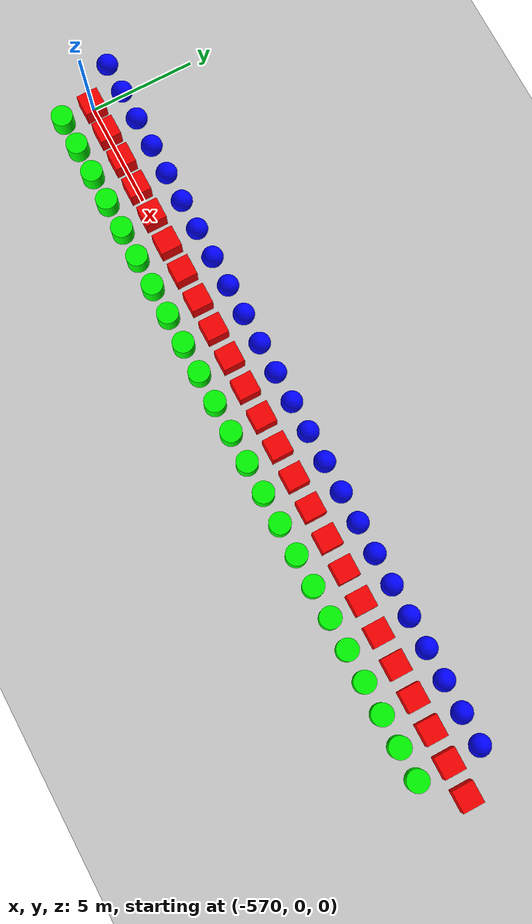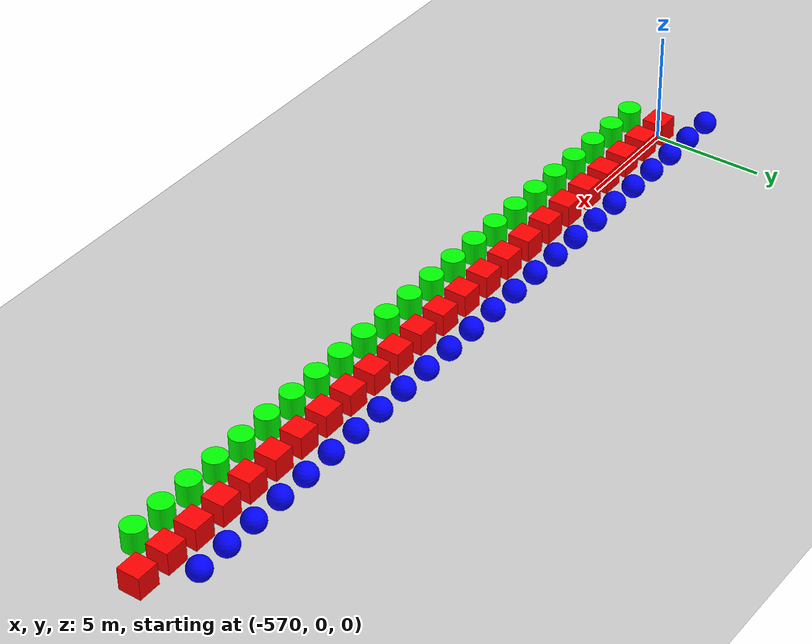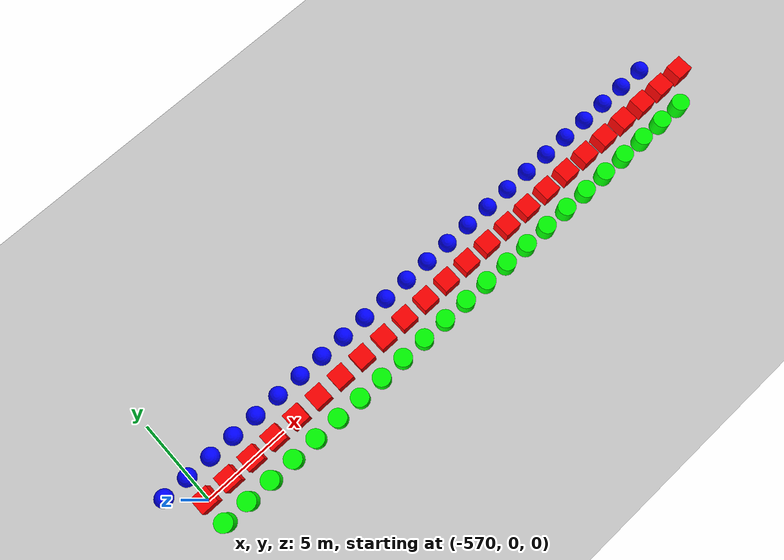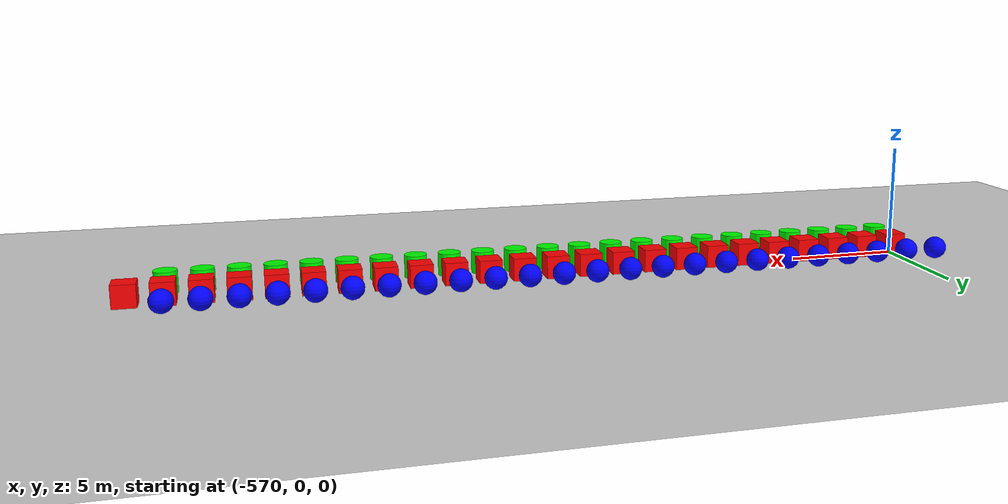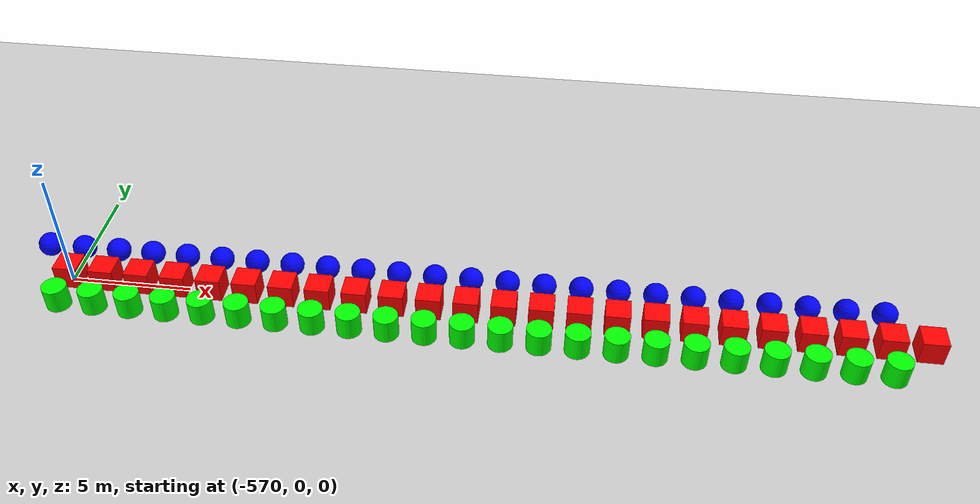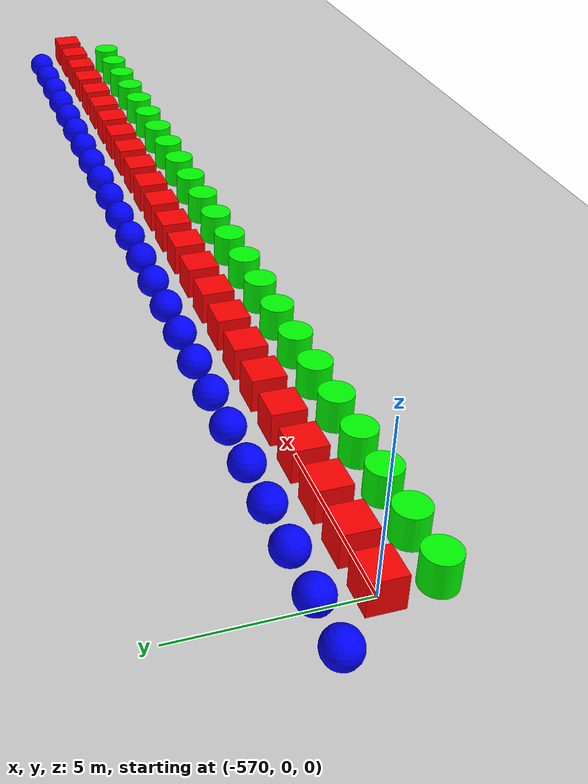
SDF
<sdf version="1.6">
 <world name="shapes">
  <model name="ground_plane">
   <static>true</static>
   <link name="link">
    <collision name="collision">
     <geometry><plane><normal>0 0 1</normal><size>100 100</size></plane></geometry>
    </collision>
    <visual name="visual">
     <geometry><plane><normal>0 0 1</normal><size>100 100</size></plane></geometry>
     <material>
      <ambient>0.8 0.8 0.8 1</ambient>
      <diffuse>0.8 0.8 0.8 1</diffuse>
      <specular>0.8 0.8 0.8 1</specular>
     </material>
    </visual>
   </link>
  </model>
  <model name="sphere_119">
   <pose>-571.5 1.5 0.5 0 0 0</pose>
   <link name="sphere_link">
    <inertial>
     <inertia><ixx>3</ixx><ixy>0</ixy><ixz>0</ixz><iyy>3</iyy><iyz>0</iyz><izz>3</izz></inertia>
     <mass>3.0</mass>
    </inertial>
    <collision name="sphere_collision"><geometry><sphere><radius>0.5</radius></sphere></geometry></collision>
    <visual name="sphere_visual">
     <geometry><sphere><radius>0.5</radius></sphere></geometry>
     <material><ambient>0 0 1 1</ambient><diffuse>0 0 1 1</diffuse><specular>0 0 1 1</specular></material>
    </visual>
   </link>
  </model>
  <model name="box_120">
   <pose>-570.0 0 0.5 0 0 0</pose>
   <link name="box_link">
    <inertial>
     <inertia><ixx>1</ixx><ixy>0</ixy><ixz>0</ixz><iyy>1</iyy><iyz>0</iyz><izz>1</izz></inertia>
     <mass>1.0</mass>
    </inertial>
    <collision name="box_collision"><geometry><box><size>1 1 1</size></box></geometry></collision>
    <visual name="box_visual">
     <geometry><box><size>1 1 1</size></box></geometry>
     <material><ambient>1 0 0 1</ambient><diffuse>1 0 0 1</diffuse><specular>1 0 0 1</specular></material>
    </visual>
   </link>
  </model>
  <model name="cylinder_120">
   <pose>-570.0 -1.5 0.5 0 0 0</pose>
   <link name="cylinder_link">
    <inertial>
     <inertia><ixx>2</ixx><ixy>0</ixy><ixz>0</ixz><iyy>2</iyy><iyz>0</iyz><izz>2</izz></inertia>
     <mass>2.0</mass>
    </inertial>
    <collision name="cylinder_collision">
     <geometry><cylinder><radius>0.5</radius><length>1.0</length></cylinder></geometry>
    </collision>
    <visual name="cylinder_visual">
     <geometry><cylinder><radius>0.5</radius><length>1.0</length></cylinder></geometry>
     <material><ambient>0 1 0 1</ambient><diffuse>0 1 0 1</diffuse><specular>0 1 0 1</specular></material>
    </visual>
   </link>
  </model>
  <model name="sphere_120">
   <pose>-570.0 1.5 0.5 0 0 0</pose>
   <link name="sphere_link">
    <inertial>
     <inertia><ixx>3</ixx><ixy>0</ixy><ixz>0</ixz><iyy>3</iyy><iyz>0</iyz><izz>3</izz></inertia>
     <mass>3.0</mass>
    </inertial>
    <collision name="sphere_collision"><geometry><sphere><radius>0.5</radius></sphere></geometry></collision>
    <visual name="sphere_visual">
     <geometry><sphere><radius>0.5</radius></sphere></geometry>
     <material><ambient>0 0 1 1</ambient><diffuse>0 0 1 1</diffuse><specular>0 0 1 1</specular></material>
    </visual>
   </link>
  </model>
  <model name="box_121">
   <pose>-568.5 0 0.5 0 0 0</pose>
   <link name="box_link">
    <inertial>
     <inertia><ixx>1</ixx><ixy>0</ixy><ixz>0</ixz><iyy>1</iyy><iyz>0</iyz><izz>1</izz></inertia>
     <mass>1.0</mass>
    </inertial>
    <collision name="box_collision"><geometry><box><size>1 1 1</size></box></geometry></collision>
    <visual name="box_visual">
     <geometry><box><size>1 1 1</size></box></geometry>
     <material><ambient>1 0 0 1</ambient><diffuse>1 0 0 1</diffuse><specular>1 0 0 1</specular></material>
    </visual>
   </link>
  </model>
  <model name="cylinder_121">
   <pose>-568.5 -1.5 0.5 0 0 0</pose>
   <link name="cylinder_link">
    <inertial>
     <inertia><ixx>2</ixx><ixy>0</ixy><ixz>0</ixz><iyy>2</iyy><iyz>0</iyz><izz>2</izz></inertia>
     <mass>2.0</mass>
    </inertial>
    <collision name="cylinder_collision">
     <geometry><cylinder><radius>0.5</radius><length>1.0</length></cylinder></geometry>
    </collision>
    <visual name="cylinder_visual">
     <geometry><cylinder><radius>0.5</radius><length>1.0</length></cylinder></geometry>
     <material><ambient>0 1 0 1</ambient><diffuse>0 1 0 1</diffuse><specular>0 1 0 1</specular></material>
    </visual>
   </link>
  </model>
  <model name="sphere_121">
   <pose>-568.5 1.5 0.5 0 0 0</pose>
   <link name="sphere_link">
    <inertial>
     <inertia><ixx>3</ixx><ixy>0</ixy><ixz>0</ixz><iyy>3</iyy><iyz>0</iyz><izz>3</izz></inertia>
     <mass>3.0</mass>
    </inertial>
    <collision name="sphere_collision"><geometry><sphere><radius>0.5</radius></sphere></geometry></collision>
    <visual name="sphere_visual">
     <geometry><sphere><radius>0.5</radius></sphere></geometry>
     <material><ambient>0 0 1 1</ambient><diffuse>0 0 1 1</diffuse><specular>0 0 1 1</specular></material>
    </visual>
   </link>
  </model>
  <model name="box_122">
   <pose>-567.0 0 0.5 0 0 0</pose>
   <link name="box_link">
    <inertial>
     <inertia><ixx>1</ixx><ixy>0</ixy><ixz>0</ixz><iyy>1</iyy><iyz>0</iyz><izz>1</izz></inertia>
     <mass>1.0</mass>
    </inertial>
    <collision name="box_collision"><geometry><box><size>1 1 1</size></box></geometry></collision>
    <visual name="box_visual">
     <geometry><box><size>1 1 1</size></box></geometry>
     <material><ambient>1 0 0 1</ambient><diffuse>1 0 0 1</diffuse><specular>1 0 0 1</specular></material>
    </visual>
   </link>
  </model>
  <model name="cylinder_122">
   <pose>-567.0 -1.5 0.5 0 0 0</pose>
   <link name="cylinder_link">
    <inertial>
     <inertia><ixx>2</ixx><ixy>0</ixy><ixz>0</ixz><iyy>2</iyy><iyz>0</iyz><izz>2</izz></inertia>
     <mass>2.0</mass>
    </inertial>
    <collision name="cylinder_collision">
     <geometry><cylinder><radius>0.5</radius><length>1.0</length></cylinder></geometry>
    </collision>
    <visual name="cylinder_visual">
     <geometry><cylinder><radius>0.5</radius><length>1.0</length></cylinder></geometry>
     <material><ambient>0 1 0 1</ambient><diffuse>0 1 0 1</diffuse><specular>0 1 0 1</specular></material>
    </visual>
   </link>
  </model>
  <model name="sphere_122">
   <pose>-567.0 1.5 0.5 0 0 0</pose>
   <link name="sphere_link">
    <inertial>
     <inertia><ixx>3</ixx><ixy>0</ixy><ixz>0</ixz><iyy>3</iyy><iyz>0</iyz><izz>3</izz></inertia>
     <mass>3.0</mass>
    </inertial>
    <collision name="sphere_collision"><geometry><sphere><radius>0.5</radius></sphere></geometry></collision>
    <visual name="sphere_visual">
     <geometry><sphere><radius>0.5</radius></sphere></geometry>
     <material><ambient>0 0 1 1</ambient><diffuse>0 0 1 1</diffuse><specular>0 0 1 1</specular></material>
    </visual>
   </link>
  </model>
  <model name="box_123">
   <pose>-565.5 0 0.5 0 0 0</pose>
   <link name="box_link">
    <inertial>
     <inertia><ixx>1</ixx><ixy>0</ixy><ixz>0</ixz><iyy>1</iyy><iyz>0</iyz><izz>1</izz></inertia>
     <mass>1.0</mass>
    </inertial>
    <collision name="box_collision"><geometry><box><size>1 1 1</size></box></geometry></collision>
    <visual name="box_visual">
     <geometry><box><size>1 1 1</size></box></geometry>
     <material><ambient>1 0 0 1</ambient><diffuse>1 0 0 1</diffuse><specular>1 0 0 1</specular></material>
    </visual>
   </link>
  </model>
  <model name="cylinder_123">
   <pose>-565.5 -1.5 0.5 0 0 0</pose>
   <link name="cylinder_link">
    <inertial>
     <inertia><ixx>2</ixx><ixy>0</ixy><ixz>0</ixz><iyy>2</iyy><iyz>0</iyz><izz>2</izz></inertia>
     <mass>2.0</mass>
    </inertial>
    <collision name="cylinder_collision">
     <geometry><cylinder><radius>0.5</radius><length>1.0</length></cylinder></geometry>
    </collision>
    <visual name="cylinder_visual">
     <geometry><cylinder><radius>0.5</radius><length>1.0</length></cylinder></geometry>
     <material><ambient>0 1 0 1</ambient><diffuse>0 1 0 1</diffuse><specular>0 1 0 1</specular></material>
    </visual>
   </link>
  </model>
  <model name="sphere_123">
   <pose>-565.5 1.5 0.5 0 0 0</pose>
   <link name="sphere_link">
    <inertial>
     <inertia><ixx>3</ixx><ixy>0</ixy><ixz>0</ixz><iyy>3</iyy><iyz>0</iyz><izz>3</izz></inertia>
     <mass>3.0</mass>
    </inertial>
    <collision name="sphere_collision"><geometry><sphere><radius>0.5</radius></sphere></geometry></collision>
    <visual name="sphere_visual">
     <geometry><sphere><radius>0.5</radius></sphere></geometry>
     <material><ambient>0 0 1 1</ambient><diffuse>0 0 1 1</diffuse><specular>0 0 1 1</specular></material>
    </visual>
   </link>
  </model>
  <model name="box_124">
   <pose>-564.0 0 0.5 0 0 0</pose>
   <link name="box_link">
    <inertial>
     <inertia><ixx>1</ixx><ixy>0</ixy><ixz>0</ixz><iyy>1</iyy><iyz>0</iyz><izz>1</izz></inertia>
     <mass>1.0</mass>
    </inertial>
    <collision name="box_collision"><geometry><box><size>1 1 1</size></box></geometry></collision>
    <visual name="box_visual">
     <geometry><box><size>1 1 1</size></box></geometry>
     <material><ambient>1 0 0 1</ambient><diffuse>1 0 0 1</diffuse><specular>1 0 0 1</specular></material>
    </visual>
   </link>
  </model>
  <model name="cylinder_124">
   <pose>-564.0 -1.5 0.5 0 0 0</pose>
   <link name="cylinder_link">
    <inertial>
     <inertia><ixx>2</ixx><ixy>0</ixy><ixz>0</ixz><iyy>2</iyy><iyz>0</iyz><izz>2</izz></inertia>
     <mass>2.0</mass>
    </inertial>
    <collision name="cylinder_collision">
     <geometry><cylinder><radius>0.5</radius><length>1.0</length></cylinder></geometry>
    </collision>
    <visual name="cylinder_visual">
     <geometry><cylinder><radius>0.5</radius><length>1.0</length></cylinder></geometry>
     <material><ambient>0 1 0 1</ambient><diffuse>0 1 0 1</diffuse><specular>0 1 0 1</specular></material>
    </visual>
   </link>
  </model>
  <model name="sphere_124">
   <pose>-564.0 1.5 0.5 0 0 0</pose>
   <link name="sphere_link">
    <inertial>
     <inertia><ixx>3</ixx><ixy>0</ixy><ixz>0</ixz><iyy>3</iyy><iyz>0</iyz><izz>3</izz></inertia>
     <mass>3.0</mass>
    </inertial>
    <collision name="sphere_collision"><geometry><sphere><radius>0.5</radius></sphere></geometry></collision>
    <visual name="sphere_visual">
     <geometry><sphere><radius>0.5</radius></sphere></geometry>
     <material><ambient>0 0 1 1</ambient><diffuse>0 0 1 1</diffuse><specular>0 0 1 1</specular></material>
    </visual>
   </link>
  </model>
  <model name="box_125">
   <pose>-562.5 0 0.5 0 0 0</pose>
   <link name="box_link">
    <inertial>
     <inertia><ixx>1</ixx><ixy>0</ixy><ixz>0</ixz><iyy>1</iyy><iyz>0</iyz><izz>1</izz></inertia>
     <mass>1.0</mass>
    </inertial>
    <collision name="box_collision"><geometry><box><size>1 1 1</size></box></geometry></collision>
    <visual name="box_visual">
     <geometry><box><size>1 1 1</size></box></geometry>
     <material><ambient>1 0 0 1</ambient><diffuse>1 0 0 1</diffuse><specular>1 0 0 1</specular></material>
    </visual>
   </link>
  </model>
  <model name="cylinder_125">
   <pose>-562.5 -1.5 0.5 0 0 0</pose>
   <link name="cylinder_link">
    <inertial>
     <inertia><ixx>2</ixx><ixy>0</ixy><ixz>0</ixz><iyy>2</iyy><iyz>0</iyz><izz>2</izz></inertia>
     <mass>2.0</mass>
    </inertial>
    <collision name="cylinder_collision">
     <geometry><cylinder><radius>0.5</radius><length>1.0</length></cylinder></geometry>
    </collision>
    <visual name="cylinder_visual">
     <geometry><cylinder><radius>0.5</radius><length>1.0</length></cylinder></geometry>
     <material><ambient>0 1 0 1</ambient><diffuse>0 1 0 1</diffuse><specular>0 1 0 1</specular></material>
    </visual>
   </link>
  </model>
  <model name="sphere_125">
   <pose>-562.5 1.5 0.5 0 0 0</pose>
   <link name="sphere_link">
    <inertial>
     <inertia><ixx>3</ixx><ixy>0</ixy><ixz>0</ixz><iyy>3</iyy><iyz>0</iyz><izz>3</izz></inertia>
     <mass>3.0</mass>
    </inertial>
    <collision name="sphere_collision"><geometry><sphere><radius>0.5</radius></sphere></geometry></collision>
    <visual name="sphere_visual">
     <geometry><sphere><radius>0.5</radius></sphere></geometry>
     <material><ambient>0 0 1 1</ambient><diffuse>0 0 1 1</diffuse><specular>0 0 1 1</specular></material>
    </visual>
   </link>
  </model>
  <model name="box_126">
   <pose>-561.0 0 0.5 0 0 0</pose>
   <link name="box_link">
    <inertial>
     <inertia><ixx>1</ixx><ixy>0</ixy><ixz>0</ixz><iyy>1</iyy><iyz>0</iyz><izz>1</izz></inertia>
     <mass>1.0</mass>
    </inertial>
    <collision name="box_collision"><geometry><box><size>1 1 1</size></box></geometry></collision>
    <visual name="box_visual">
     <geometry><box><size>1 1 1</size></box></geometry>
     <material><ambient>1 0 0 1</ambient><diffuse>1 0 0 1</diffuse><specular>1 0 0 1</specular></material>
    </visual>
   </link>
  </model>
  <model name="cylinder_126">
   <pose>-561.0 -1.5 0.5 0 0 0</pose>
   <link name="cylinder_link">
    <inertial>
     <inertia><ixx>2</ixx><ixy>0</ixy><ixz>0</ixz><iyy>2</iyy><iyz>0</iyz><izz>2</izz></inertia>
     <mass>2.0</mass>
    </inertial>
    <collision name="cylinder_collision">
     <geometry><cylinder><radius>0.5</radius><length>1.0</length></cylinder></geometry>
    </collision>
    <visual name="cylinder_visual">
     <geometry><cylinder><radius>0.5</radius><length>1.0</length></cylinder></geometry>
     <material><ambient>0 1 0 1</ambient><diffuse>0 1 0 1</diffuse><specular>0 1 0 1</specular></material>
    </visual>
   </link>
  </model>
  <model name="sphere_126">
   <pose>-561.0 1.5 0.5 0 0 0</pose>
   <link name="sphere_link">
    <inertial>
     <inertia><ixx>3</ixx><ixy>0</ixy><ixz>0</ixz><iyy>3</iyy><iyz>0</iyz><izz>3</izz></inertia>
     <mass>3.0</mass>
    </inertial>
    <collision name="sphere_collision"><geometry><sphere><radius>0.5</radius></sphere></geometry></collision>
    <visual name="sphere_visual">
     <geometry><sphere><radius>0.5</radius></sphere></geometry>
     <material><ambient>0 0 1 1</ambient><diffuse>0 0 1 1</diffuse><specular>0 0 1 1</specular></material>
    </visual>
   </link>
  </model>
  <model name="box_127">
   <pose>-559.5 0 0.5 0 0 0</pose>
   <link name="box_link">
    <inertial>
     <inertia><ixx>1</ixx><ixy>0</ixy><ixz>0</ixz><iyy>1</iyy><iyz>0</iyz><izz>1</izz></inertia>
     <mass>1.0</mass>
    </inertial>
    <collision name="box_collision"><geometry><box><size>1 1 1</size></box></geometry></collision>
    <visual name="box_visual">
     <geometry><box><size>1 1 1</size></box></geometry>
     <material><ambient>1 0 0 1</ambient><diffuse>1 0 0 1</diffuse><specular>1 0 0 1</specular></material>
    </visual>
   </link>
  </model>
  <model name="cylinder_127">
   <pose>-559.5 -1.5 0.5 0 0 0</pose>
   <link name="cylinder_link">
    <inertial>
     <inertia><ixx>2</ixx><ixy>0</ixy><ixz>0</ixz><iyy>2</iyy><iyz>0</iyz><izz>2</izz></inertia>
     <mass>2.0</mass>
    </inertial>
    <collision name="cylinder_collision">
     <geometry><cylinder><radius>0.5</radius><length>1.0</length></cylinder></geometry>
    </collision>
    <visual name="cylinder_visual">
     <geometry><cylinder><radius>0.5</radius><length>1.0</length></cylinder></geometry>
     <material><ambient>0 1 0 1</ambient><diffuse>0 1 0 1</diffuse><specular>0 1 0 1</specular></material>
    </visual>
   </link>
  </model>
  <model name="sphere_127">
   <pose>-559.5 1.5 0.5 0 0 0</pose>
   <link name="sphere_link">
    <inertial>
     <inertia><ixx>3</ixx><ixy>0</ixy><ixz>0</ixz><iyy>3</iyy><iyz>0</iyz><izz>3</izz></inertia>
     <mass>3.0</mass>
    </inertial>
    <collision name="sphere_collision"><geometry><sphere><radius>0.5</radius></sphere></geometry></collision>
    <visual name="sphere_visual">
     <geometry><sphere><radius>0.5</radius></sphere></geometry>
     <material><ambient>0 0 1 1</ambient><diffuse>0 0 1 1</diffuse><specular>0 0 1 1</specular></material>
    </visual>
   </link>
  </model>
  <model name="box_128">
   <pose>-558.0 0 0.5 0 0 0</pose>
   <link name="box_link">
    <inertial>
     <inertia><ixx>1</ixx><ixy>0</ixy><ixz>0</ixz><iyy>1</iyy><iyz>0</iyz><izz>1</izz></inertia>
     <mass>1.0</mass>
    </inertial>
    <collision name="box_collision"><geometry><box><size>1 1 1</size></box></geometry></collision>
    <visual name="box_visual">
     <geometry><box><size>1 1 1</size></box></geometry>
     <material><ambient>1 0 0 1</ambient><diffuse>1 0 0 1</diffuse><specular>1 0 0 1</specular></material>
    </visual>
   </link>
  </model>
  <model name="cylinder_128">
   <pose>-558.0 -1.5 0.5 0 0 0</pose>
   <link name="cylinder_link">
    <inertial>
     <inertia><ixx>2</ixx><ixy>0</ixy><ixz>0</ixz><iyy>2</iyy><iyz>0</iyz><izz>2</izz></inertia>
     <mass>2.0</mass>
    </inertial>
    <collision name="cylinder_collision">
     <geometry><cylinder><radius>0.5</radius><length>1.0</length></cylinder></geometry>
    </collision>
    <visual name="cylinder_visual">
     <geometry><cylinder><radius>0.5</radius><length>1.0</length></cylinder></geometry>
     <material><ambient>0 1 0 1</ambient><diffuse>0 1 0 1</diffuse><specular>0 1 0 1</specular></material>
    </visual>
   </link>
  </model>
  <model name="sphere_128">
   <pose>-558.0 1.5 0.5 0 0 0</pose>
   <link name="sphere_link">
    <inertial>
     <inertia><ixx>3</ixx><ixy>0</ixy><ixz>0</ixz><iyy>3</iyy><iyz>0</iyz><izz>3</izz></inertia>
     <mass>3.0</mass>
    </inertial>
    <collision name="sphere_collision"><geometry><sphere><radius>0.5</radius></sphere></geometry></collision>
    <visual name="sphere_visual">
     <geometry><sphere><radius>0.5</radius></sphere></geometry>
     <material><ambient>0 0 1 1</ambient><diffuse>0 0 1 1</diffuse><specular>0 0 1 1</specular></material>
    </visual>
   </link>
  </model>
  <model name="box_129">
   <pose>-556.5 0 0.5 0 0 0</pose>
   <link name="box_link">
    <inertial>
     <inertia><ixx>1</ixx><ixy>0</ixy><ixz>0</ixz><iyy>1</iyy><iyz>0</iyz><izz>1</izz></inertia>
     <mass>1.0</mass>
    </inertial>
    <collision name="box_collision"><geometry><box><size>1 1 1</size></box></geometry></collision>
    <visual name="box_visual">
     <geometry><box><size>1 1 1</size></box></geometry>
     <material><ambient>1 0 0 1</ambient><diffuse>1 0 0 1</diffuse><specular>1 0 0 1</specular></material>
    </visual>
   </link>
  </model>
  <model name="cylinder_129">
   <pose>-556.5 -1.5 0.5 0 0 0</pose>
   <link name="cylinder_link">
    <inertial>
     <inertia><ixx>2</ixx><ixy>0</ixy><ixz>0</ixz><iyy>2</iyy><iyz>0</iyz><izz>2</izz></inertia>
     <mass>2.0</mass>
    </inertial>
    <collision name="cylinder_collision">
     <geometry><cylinder><radius>0.5</radius><length>1.0</length></cylinder></geometry>
    </collision>
    <visual name="cylinder_visual">
     <geometry><cylinder><radius>0.5</radius><length>1.0</length></cylinder></geometry>
     <material><ambient>0 1 0 1</ambient><diffuse>0 1 0 1</diffuse><specular>0 1 0 1</specular></material>
    </visual>
   </link>
  </model>
  <model name="sphere_129">
   <pose>-556.5 1.5 0.5 0 0 0</pose>
   <link name="sphere_link">
    <inertial>
     <inertia><ixx>3</ixx><ixy>0</ixy><ixz>0</ixz><iyy>3</iyy><iyz>0</iyz><izz>3</izz></inertia>
     <mass>3.0</mass>
    </inertial>
    <collision name="sphere_collision"><geometry><sphere><radius>0.5</radius></sphere></geometry></collision>
    <visual name="sphere_visual">
     <geometry><sphere><radius>0.5</radius></sphere></geometry>
     <material><ambient>0 0 1 1</ambient><diffuse>0 0 1 1</diffuse><specular>0 0 1 1</specular></material>
    </visual>
   </link>
  </model>
  <model name="box_130">
   <pose>-555.0 0 0.5 0 0 0</pose>
   <link name="box_link">
    <inertial>
     <inertia><ixx>1</ixx><ixy>0</ixy><ixz>0</ixz><iyy>1</iyy><iyz>0</iyz><izz>1</izz></inertia>
     <mass>1.0</mass>
    </inertial>
    <collision name="box_collision"><geometry><box><size>1 1 1</size></box></geometry></collision>
    <visual name="box_visual">
     <geometry><box><size>1 1 1</size></box></geometry>
     <material><ambient>1 0 0 1</ambient><diffuse>1 0 0 1</diffuse><specular>1 0 0 1</specular></material>
    </visual>
   </link>
  </model>
  <model name="cylinder_130">
   <pose>-555.0 -1.5 0.5 0 0 0</pose>
   <link name="cylinder_link">
    <inertial>
     <inertia><ixx>2</ixx><ixy>0</ixy><ixz>0</ixz><iyy>2</iyy><iyz>0</iyz><izz>2</izz></inertia>
     <mass>2.0</mass>
    </inertial>
    <collision name="cylinder_collision">
     <geometry><cylinder><radius>0.5</radius><length>1.0</length></cylinder></geometry>
    </collision>
    <visual name="cylinder_visual">
     <geometry><cylinder><radius>0.5</radius><length>1.0</length></cylinder></geometry>
     <material><ambient>0 1 0 1</ambient><diffuse>0 1 0 1</diffuse><specular>0 1 0 1</specular></material>
    </visual>
   </link>
  </model>
  <model name="sphere_130">
   <pose>-555.0 1.5 0.5 0 0 0</pose>
   <link name="sphere_link">
    <inertial>
     <inertia><ixx>3</ixx><ixy>0</ixy><ixz>0</ixz><iyy>3</iyy><iyz>0</iyz><izz>3</izz></inertia>
     <mass>3.0</mass>
    </inertial>
    <collision name="sphere_collision"><geometry><sphere><radius>0.5</radius></sphere></geometry></collision>
    <visual name="sphere_visual">
     <geometry><sphere><radius>0.5</radius></sphere></geometry>
     <material><ambient>0 0 1 1</ambient><diffuse>0 0 1 1</diffuse><specular>0 0 1 1</specular></material>
    </visual>
   </link>
  </model>
  <model name="box_131">
   <pose>-553.5 0 0.5 0 0 0</pose>
   <link name="box_link">
    <inertial>
     <inertia><ixx>1</ixx><ixy>0</ixy><ixz>0</ixz><iyy>1</iyy><iyz>0</iyz><izz>1</izz></inertia>
     <mass>1.0</mass>
    </inertial>
    <collision name="box_collision"><geometry><box><size>1 1 1</size></box></geometry></collision>
    <visual name="box_visual">
     <geometry><box><size>1 1 1</size></box></geometry>
     <material><ambient>1 0 0 1</ambient><diffuse>1 0 0 1</diffuse><specular>1 0 0 1</specular></material>
    </visual>
   </link>
  </model>
  <model name="cylinder_131">
   <pose>-553.5 -1.5 0.5 0 0 0</pose>
   <link name="cylinder_link">
    <inertial>
     <inertia><ixx>2</ixx><ixy>0</ixy><ixz>0</ixz><iyy>2</iyy><iyz>0</iyz><izz>2</izz></inertia>
     <mass>2.0</mass>
    </inertial>
    <collision name="cylinder_collision">
     <geometry><cylinder><radius>0.5</radius><length>1.0</length></cylinder></geometry>
    </collision>
    <visual name="cylinder_visual">
     <geometry><cylinder><radius>0.5</radius><length>1.0</length></cylinder></geometry>
     <material><ambient>0 1 0 1</ambient><diffuse>0 1 0 1</diffuse><specular>0 1 0 1</specular></material>
    </visual>
   </link>
  </model>
  <model name="sphere_131">
   <pose>-553.5 1.5 0.5 0 0 0</pose>
   <link name="sphere_link">
    <inertial>
     <inertia><ixx>3</ixx><ixy>0</ixy><ixz>0</ixz><iyy>3</iyy><iyz>0</iyz><izz>3</izz></inertia>
     <mass>3.0</mass>
    </inertial>
    <collision name="sphere_collision"><geometry><sphere><radius>0.5</radius></sphere></geometry></collision>
    <visual name="sphere_visual">
     <geometry><sphere><radius>0.5</radius></sphere></geometry>
     <material><ambient>0 0 1 1</ambient><diffuse>0 0 1 1</diffuse><specular>0 0 1 1</specular></material>
    </visual>
   </link>
  </model>
  <model name="box_132">
   <pose>-552.0 0 0.5 0 0 0</pose>
   <link name="box_link">
    <inertial>
     <inertia><ixx>1</ixx><ixy>0</ixy><ixz>0</ixz><iyy>1</iyy><iyz>0</iyz><izz>1</izz></inertia>
     <mass>1.0</mass>
    </inertial>
    <collision name="box_collision"><geometry><box><size>1 1 1</size></box></geometry></collision>
    <visual name="box_visual">
     <geometry><box><size>1 1 1</size></box></geometry>
     <material><ambient>1 0 0 1</ambient><diffuse>1 0 0 1</diffuse><specular>1 0 0 1</specular></material>
    </visual>
   </link>
  </model>
  <model name="cylinder_132">
   <pose>-552.0 -1.5 0.5 0 0 0</pose>
   <link name="cylinder_link">
    <inertial>
     <inertia><ixx>2</ixx><ixy>0</ixy><ixz>0</ixz><iyy>2</iyy><iyz>0</iyz><izz>2</izz></inertia>
     <mass>2.0</mass>
    </inertial>
    <collision name="cylinder_collision">
     <geometry><cylinder><radius>0.5</radius><length>1.0</length></cylinder></geometry>
    </collision>
    <visual name="cylinder_visual">
     <geometry><cylinder><radius>0.5</radius><length>1.0</length></cylinder></geometry>
     <material><ambient>0 1 0 1</ambient><diffuse>0 1 0 1</diffuse><specular>0 1 0 1</specular></material>
    </visual>
   </link>
  </model>
  <model name="sphere_132">
   <pose>-552.0 1.5 0.5 0 0 0</pose>
   <link name="sphere_link">
    <inertial>
     <inertia><ixx>3</ixx><ixy>0</ixy><ixz>0</ixz><iyy>3</iyy><iyz>0</iyz><izz>3</izz></inertia>
     <mass>3.0</mass>
    </inertial>
    <collision name="sphere_collision"><geometry><sphere><radius>0.5</radius></sphere></geometry></collision>
    <visual name="sphere_visual">
     <geometry><sphere><radius>0.5</radius></sphere></geometry>
     <material><ambient>0 0 1 1</ambient><diffuse>0 0 1 1</diffuse><specular>0 0 1 1</specular></material>
    </visual>
   </link>
  </model>
  <model name="box_133">
   <pose>-550.5 0 0.5 0 0 0</pose>
   <link name="box_link">
    <inertial>
     <inertia><ixx>1</ixx><ixy>0</ixy><ixz>0</ixz><iyy>1</iyy><iyz>0</iyz><izz>1</izz></inertia>
     <mass>1.0</mass>
    </inertial>
    <collision name="box_collision"><geometry><box><size>1 1 1</size></box></geometry></collision>
    <visual name="box_visual">
     <geometry><box><size>1 1 1</size></box></geometry>
     <material><ambient>1 0 0 1</ambient><diffuse>1 0 0 1</diffuse><specular>1 0 0 1</specular></material>
    </visual>
   </link>
  </model>
  <model name="cylinder_133">
   <pose>-550.5 -1.5 0.5 0 0 0</pose>
   <link name="cylinder_link">
    <inertial>
     <inertia><ixx>2</ixx><ixy>0</ixy><ixz>0</ixz><iyy>2</iyy><iyz>0</iyz><izz>2</izz></inertia>
     <mass>2.0</mass>
    </inertial>
    <collision name="cylinder_collision">
     <geometry><cylinder><radius>0.5</radius><length>1.0</length></cylinder></geometry>
    </collision>
    <visual name="cylinder_visual">
     <geometry><cylinder><radius>0.5</radius><length>1.0</length></cylinder></geometry>
     <material><ambient>0 1 0 1</ambient><diffuse>0 1 0 1</diffuse><specular>0 1 0 1</specular></material>
    </visual>
   </link>
  </model>
  <model name="sphere_133">
   <pose>-550.5 1.5 0.5 0 0 0</pose>
   <link name="sphere_link">
    <inertial>
     <inertia><ixx>3</ixx><ixy>0</ixy><ixz>0</ixz><iyy>3</iyy><iyz>0</iyz><izz>3</izz></inertia>
     <mass>3.0</mass>
    </inertial>
    <collision name="sphere_collision"><geometry><sphere><radius>0.5</radius></sphere></geometry></collision>
    <visual name="sphere_visual">
     <geometry><sphere><radius>0.5</radius></sphere></geometry>
     <material><ambient>0 0 1 1</ambient><diffuse>0 0 1 1</diffuse><specular>0 0 1 1</specular></material>
    </visual>
   </link>
  </model>
  <model name="box_134">
   <pose>-549.0 0 0.5 0 0 0</pose>
   <link name="box_link">
    <inertial>
     <inertia><ixx>1</ixx><ixy>0</ixy><ixz>0</ixz><iyy>1</iyy><iyz>0</iyz><izz>1</izz></inertia>
     <mass>1.0</mass>
    </inertial>
    <collision name="box_collision"><geometry><box><size>1 1 1</size></box></geometry></collision>
    <visual name="box_visual">
     <geometry><box><size>1 1 1</size></box></geometry>
     <material><ambient>1 0 0 1</ambient><diffuse>1 0 0 1</diffuse><specular>1 0 0 1</specular></material>
    </visual>
   </link>
  </model>
  <model name="cylinder_134">
   <pose>-549.0 -1.5 0.5 0 0 0</pose>
   <link name="cylinder_link">
    <inertial>
     <inertia><ixx>2</ixx><ixy>0</ixy><ixz>0</ixz><iyy>2</iyy><iyz>0</iyz><izz>2</izz></inertia>
     <mass>2.0</mass>
    </inertial>
    <collision name="cylinder_collision">
     <geometry><cylinder><radius>0.5</radius><length>1.0</length></cylinder></geometry>
    </collision>
    <visual name="cylinder_visual">
     <geometry><cylinder><radius>0.5</radius><length>1.0</length></cylinder></geometry>
     <material><ambient>0 1 0 1</ambient><diffuse>0 1 0 1</diffuse><specular>0 1 0 1</specular></material>
    </visual>
   </link>
  </model>
  <model name="sphere_134">
   <pose>-549.0 1.5 0.5 0 0 0</pose>
   <link name="sphere_link">
    <inertial>
     <inertia><ixx>3</ixx><ixy>0</ixy><ixz>0</ixz><iyy>3</iyy><iyz>0</iyz><izz>3</izz></inertia>
     <mass>3.0</mass>
    </inertial>
    <collision name="sphere_collision"><geometry><sphere><radius>0.5</radius></sphere></geometry></collision>
    <visual name="sphere_visual">
     <geometry><sphere><radius>0.5</radius></sphere></geometry>
     <material><ambient>0 0 1 1</ambient><diffuse>0 0 1 1</diffuse><specular>0 0 1 1</specular></material>
    </visual>
   </link>
  </model>
  <model name="box_135">
   <pose>-547.5 0 0.5 0 0 0</pose>
   <link name="box_link">
    <inertial>
     <inertia><ixx>1</ixx><ixy>0</ixy><ixz>0</ixz><iyy>1</iyy><iyz>0</iyz><izz>1</izz></inertia>
     <mass>1.0</mass>
    </inertial>
    <collision name="box_collision"><geometry><box><size>1 1 1</size></box></geometry></collision>
    <visual name="box_visual">
     <geometry><box><size>1 1 1</size></box></geometry>
     <material><ambient>1 0 0 1</ambient><diffuse>1 0 0 1</diffuse><specular>1 0 0 1</specular></material>
    </visual>
   </link>
  </model>
  <model name="cylinder_135">
   <pose>-547.5 -1.5 0.5 0 0 0</pose>
   <link name="cylinder_link">
    <inertial>
     <inertia><ixx>2</ixx><ixy>0</ixy><ixz>0</ixz><iyy>2</iyy><iyz>0</iyz><izz>2</izz></inertia>
     <mass>2.0</mass>
    </inertial>
    <collision name="cylinder_collision">
     <geometry><cylinder><radius>0.5</radius><length>1.0</length></cylinder></geometry>
    </collision>
    <visual name="cylinder_visual">
     <geometry><cylinder><radius>0.5</radius><length>1.0</length></cylinder></geometry>
     <material><ambient>0 1 0 1</ambient><diffuse>0 1 0 1</diffuse><specular>0 1 0 1</specular></material>
    </visual>
   </link>
  </model>
  <model name="sphere_135">
   <pose>-547.5 1.5 0.5 0 0 0</pose>
   <link name="sphere_link">
    <inertial>
     <inertia><ixx>3</ixx><ixy>0</ixy><ixz>0</ixz><iyy>3</iyy><iyz>0</iyz><izz>3</izz></inertia>
     <mass>3.0</mass>
    </inertial>
    <collision name="sphere_collision"><geometry><sphere><radius>0.5</radius></sphere></geometry></collision>
    <visual name="sphere_visual">
     <geometry><sphere><radius>0.5</radius></sphere></geometry>
     <material><ambient>0 0 1 1</ambient><diffuse>0 0 1 1</diffuse><specular>0 0 1 1</specular></material>
    </visual>
   </link>
  </model>
  <model name="box_136">
   <pose>-546.0 0 0.5 0 0 0</pose>
   <link name="box_link">
    <inertial>
     <inertia><ixx>1</ixx><ixy>0</ixy><ixz>0</ixz><iyy>1</iyy><iyz>0</iyz><izz>1</izz></inertia>
     <mass>1.0</mass>
    </inertial>
    <collision name="box_collision"><geometry><box><size>1 1 1</size></box></geometry></collision>
    <visual name="box_visual">
     <geometry><box><size>1 1 1</size></box></geometry>
     <material><ambient>1 0 0 1</ambient><diffuse>1 0 0 1</diffuse><specular>1 0 0 1</specular></material>
    </visual>
   </link>
  </model>
  <model name="cylinder_136">
   <pose>-546.0 -1.5 0.5 0 0 0</pose>
   <link name="cylinder_link">
    <inertial>
     <inertia><ixx>2</ixx><ixy>0</ixy><ixz>0</ixz><iyy>2</iyy><iyz>0</iyz><izz>2</izz></inertia>
     <mass>2.0</mass>
    </inertial>
    <collision name="cylinder_collision">
     <geometry><cylinder><radius>0.5</radius><length>1.0</length></cylinder></geometry>
    </collision>
    <visual name="cylinder_visual">
     <geometry><cylinder><radius>0.5</radius><length>1.0</length></cylinder></geometry>
     <material><ambient>0 1 0 1</ambient><diffuse>0 1 0 1</diffuse><specular>0 1 0 1</specular></material>
    </visual>
   </link>
  </model>
  <model name="sphere_136">
   <pose>-546.0 1.5 0.5 0 0 0</pose>
   <link name="sphere_link">
    <inertial>
     <inertia><ixx>3</ixx><ixy>0</ixy><ixz>0</ixz><iyy>3</iyy><iyz>0</iyz><izz>3</izz></inertia>
     <mass>3.0</mass>
    </inertial>
    <collision name="sphere_collision"><geometry><sphere><radius>0.5</radius></sphere></geometry></collision>
    <visual name="sphere_visual">
     <geometry><sphere><radius>0.5</radius></sphere></geometry>
     <material><ambient>0 0 1 1</ambient><diffuse>0 0 1 1</diffuse><specular>0 0 1 1</specular></material>
    </visual>
   </link>
  </model>
  <model name="box_137">
   <pose>-544.5 0 0.5 0 0 0</pose>
   <link name="box_link">
    <inertial>
     <inertia><ixx>1</ixx><ixy>0</ixy><ixz>0</ixz><iyy>1</iyy><iyz>0</iyz><izz>1</izz></inertia>
     <mass>1.0</mass>
    </inertial>
    <collision name="box_collision"><geometry><box><size>1 1 1</size></box></geometry></collision>
    <visual name="box_visual">
     <geometry><box><size>1 1 1</size></box></geometry>
     <material><ambient>1 0 0 1</ambient><diffuse>1 0 0 1</diffuse><specular>1 0 0 1</specular></material>
    </visual>
   </link>
  </model>
  <model name="cylinder_137">
   <pose>-544.5 -1.5 0.5 0 0 0</pose>
   <link name="cylinder_link">
    <inertial>
     <inertia><ixx>2</ixx><ixy>0</ixy><ixz>0</ixz><iyy>2</iyy><iyz>0</iyz><izz>2</izz></inertia>
     <mass>2.0</mass>
    </inertial>
    <collision name="cylinder_collision">
     <geometry><cylinder><radius>0.5</radius><length>1.0</length></cylinder></geometry>
    </collision>
    <visual name="cylinder_visual">
     <geometry><cylinder><radius>0.5</radius><length>1.0</length></cylinder></geometry>
     <material><ambient>0 1 0 1</ambient><diffuse>0 1 0 1</diffuse><specular>0 1 0 1</specular></material>
    </visual>
   </link>
  </model>
  <model name="sphere_137">
   <pose>-544.5 1.5 0.5 0 0 0</pose>
   <link name="sphere_link">
    <inertial>
     <inertia><ixx>3</ixx><ixy>0</ixy><ixz>0</ixz><iyy>3</iyy><iyz>0</iyz><izz>3</izz></inertia>
     <mass>3.0</mass>
    </inertial>
    <collision name="sphere_collision"><geometry><sphere><radius>0.5</radius></sphere></geometry></collision>
    <visual name="sphere_visual">
     <geometry><sphere><radius>0.5</radius></sphere></geometry>
     <material><ambient>0 0 1 1</ambient><diffuse>0 0 1 1</diffuse><specular>0 0 1 1</specular></material>
    </visual>
   </link>
  </model>
  <model name="box_138">
   <pose>-543.0 0 0.5 0 0 0</pose>
   <link name="box_link">
    <inertial>
     <inertia><ixx>1</ixx><ixy>0</ixy><ixz>0</ixz><iyy>1</iyy><iyz>0</iyz><izz>1</izz></inertia>
     <mass>1.0</mass>
    </inertial>
    <collision name="box_collision"><geometry><box><size>1 1 1</size></box></geometry></collision>
    <visual name="box_visual">
     <geometry><box><size>1 1 1</size></box></geometry>
     <material><ambient>1 0 0 1</ambient><diffuse>1 0 0 1</diffuse><specular>1 0 0 1</specular></material>
    </visual>
   </link>
  </model>
  <model name="cylinder_138">
   <pose>-543.0 -1.5 0.5 0 0 0</pose>
   <link name="cylinder_link">
    <inertial>
     <inertia><ixx>2</ixx><ixy>0</ixy><ixz>0</ixz><iyy>2</iyy><iyz>0</iyz><izz>2</izz></inertia>
     <mass>2.0</mass>
    </inertial>
    <collision name="cylinder_collision">
     <geometry><cylinder><radius>0.5</radius><length>1.0</length></cylinder></geometry>
    </collision>
    <visual name="cylinder_visual">
     <geometry><cylinder><radius>0.5</radius><length>1.0</length></cylinder></geometry>
     <material><ambient>0 1 0 1</ambient><diffuse>0 1 0 1</diffuse><specular>0 1 0 1</specular></material>
    </visual>
   </link>
  </model>
  <model name="sphere_138">
   <pose>-543.0 1.5 0.5 0 0 0</pose>
   <link name="sphere_link">
    <inertial>
     <inertia><ixx>3</ixx><ixy>0</ixy><ixz>0</ixz><iyy>3</iyy><iyz>0</iyz><izz>3</izz></inertia>
     <mass>3.0</mass>
    </inertial>
    <collision name="sphere_collision"><geometry><sphere><radius>0.5</radius></sphere></geometry></collision>
    <visual name="sphere_visual">
     <geometry><sphere><radius>0.5</radius></sphere></geometry>
     <material><ambient>0 0 1 1</ambient><diffuse>0 0 1 1</diffuse><specular>0 0 1 1</specular></material>
    </visual>
   </link>
  </model>
  <model name="box_139">
   <pose>-541.5 0 0.5 0 0 0</pose>
   <link name="box_link">
    <inertial>
     <inertia><ixx>1</ixx><ixy>0</ixy><ixz>0</ixz><iyy>1</iyy><iyz>0</iyz><izz>1</izz></inertia>
     <mass>1.0</mass>
    </inertial>
    <collision name="box_collision"><geometry><box><size>1 1 1</size></box></geometry></collision>
    <visual name="box_visual">
     <geometry><box><size>1 1 1</size></box></geometry>
     <material><ambient>1 0 0 1</ambient><diffuse>1 0 0 1</diffuse><specular>1 0 0 1</specular></material>
    </visual>
   </link>
  </model>
  <model name="cylinder_139">
   <pose>-541.5 -1.5 0.5 0 0 0</pose>
   <link name="cylinder_link">
    <inertial>
     <inertia><ixx>2</ixx><ixy>0</ixy><ixz>0</ixz><iyy>2</iyy><iyz>0</iyz><izz>2</izz></inertia>
     <mass>2.0</mass>
    </inertial>
    <collision name="cylinder_collision">
     <geometry><cylinder><radius>0.5</radius><length>1.0</length></cylinder></geometry>
    </collision>
    <visual name="cylinder_visual">
     <geometry><cylinder><radius>0.5</radius><length>1.0</length></cylinder></geometry>
     <material><ambient>0 1 0 1</ambient><diffuse>0 1 0 1</diffuse><specular>0 1 0 1</specular></material>
    </visual>
   </link>
  </model>
  <model name="sphere_139">
   <pose>-541.5 1.5 0.5 0 0 0</pose>
   <link name="sphere_link">
    <inertial>
     <inertia><ixx>3</ixx><ixy>0</ixy><ixz>0</ixz><iyy>3</iyy><iyz>0</iyz><izz>3</izz></inertia>
     <mass>3.0</mass>
    </inertial>
    <collision name="sphere_collision"><geometry><sphere><radius>0.5</radius></sphere></geometry></collision>
    <visual name="sphere_visual">
     <geometry><sphere><radius>0.5</radius></sphere></geometry>
     <material><ambient>0 0 1 1</ambient><diffuse>0 0 1 1</diffuse><specular>0 0 1 1</specular></material>
    </visual>
   </link>
  </model>
  <model name="box_140">
   <pose>-540.0 0 0.5 0 0 0</pose>
   <link name="box_link">
    <inertial>
     <inertia><ixx>1</ixx><ixy>0</ixy><ixz>0</ixz><iyy>1</iyy><iyz>0</iyz><izz>1</izz></inertia>
     <mass>1.0</mass>
    </inertial>
    <collision name="box_collision"><geometry><box><size>1 1 1</size></box></geometry></collision>
    <visual name="box_visual">
     <geometry><box><size>1 1 1</size></box></geometry>
     <material><ambient>1 0 0 1</ambient><diffuse>1 0 0 1</diffuse><specular>1 0 0 1</specular></material>
    </visual>
   </link>
  </model>
  <model name="cylinder_140">
   <pose>-540.0 -1.5 0.5 0 0 0</pose>
   <link name="cylinder_link">
    <inertial>
     <inertia><ixx>2</ixx><ixy>0</ixy><ixz>0</ixz><iyy>2</iyy><iyz>0</iyz><izz>2</izz></inertia>
     <mass>2.0</mass>
    </inertial>
    <collision name="cylinder_collision">
     <geometry><cylinder><radius>0.5</radius><length>1.0</length></cylinder></geometry>
    </collision>
    <visual name="cylinder_visual">
     <geometry><cylinder><radius>0.5</radius><length>1.0</length></cylinder></geometry>
     <material><ambient>0 1 0 1</ambient><diffuse>0 1 0 1</diffuse><specular>0 1 0 1</specular></material>
    </visual>
   </link>
  </model>
  <model name="sphere_140">
   <pose>-540.0 1.5 0.5 0 0 0</pose>
   <link name="sphere_link">
    <inertial>
     <inertia><ixx>3</ixx><ixy>0</ixy><ixz>0</ixz><iyy>3</iyy><iyz>0</iyz><izz>3</izz></inertia>
     <mass>3.0</mass>
    </inertial>
    <collision name="sphere_collision"><geometry><sphere><radius>0.5</radius></sphere></geometry></collision>
    <visual name="sphere_visual">
     <geometry><sphere><radius>0.5</radius></sphere></geometry>
     <material><ambient>0 0 1 1</ambient><diffuse>0 0 1 1</diffuse><specular>0 0 1 1</specular></material>
    </visual>
   </link>
  </model>
  <model name="box_141">
   <pose>-538.5 0 0.5 0 0 0</pose>
   <link name="box_link">
    <inertial>
     <inertia><ixx>1</ixx><ixy>0</ixy><ixz>0</ixz><iyy>1</iyy><iyz>0</iyz><izz>1</izz></inertia>
     <mass>1.0</mass>
    </inertial>
    <collision name="box_collision"><geometry><box><size>1 1 1</size></box></geometry></collision>
    <visual name="box_visual">
     <geometry><box><size>1 1 1</size></box></geometry>
     <material><ambient>1 0 0 1</ambient><diffuse>1 0 0 1</diffuse><specular>1 0 0 1</specular></material>
    </visual>
   </link>
  </model>
  <model name="cylinder_141">
   <pose>-538.5 -1.5 0.5 0 0 0</pose>
   <link name="cylinder_link">
    <inertial>
     <inertia><ixx>2</ixx><ixy>0</ixy><ixz>0</ixz><iyy>2</iyy><iyz>0</iyz><izz>2</izz></inertia>
     <mass>2.0</mass>
    </inertial>
    <collision name="cylinder_collision">
     <geometry><cylinder><radius>0.5</radius><length>1.0</length></cylinder></geometry>
    </collision>
    <visual name="cylinder_visual">
     <geometry><cylinder><radius>0.5</radius><length>1.0</length></cylinder></geometry>
     <material><ambient>0 1 0 1</ambient><diffuse>0 1 0 1</diffuse><specular>0 1 0 1</specular></material>
    </visual>
   </link>
  </model>
  <model name="sphere_141">
   <pose>-538.5 1.5 0.5 0 0 0</pose>
   <link name="sphere_link">
    <inertial>
     <inertia><ixx>3</ixx><ixy>0</ixy><ixz>0</ixz><iyy>3</iyy><iyz>0</iyz><izz>3</izz></inertia>
     <mass>3.0</mass>
    </inertial>
    <collision name="sphere_collision"><geometry><sphere><radius>0.5</radius></sphere></geometry></collision>
    <visual name="sphere_visual">
     <geometry><sphere><radius>0.5</radius></sphere></geometry>
     <material><ambient>0 0 1 1</ambient><diffuse>0 0 1 1</diffuse><specular>0 0 1 1</specular></material>
    </visual>
   </link>
  </model>
  <model name="box_142">
   <pose>-537.0 0 0.5 0 0 0</pose>
   <link name="box_link">
    <inertial>
     <inertia><ixx>1</ixx><ixy>0</ixy><ixz>0</ixz><iyy>1</iyy><iyz>0</iyz><izz>1</izz></inertia>
     <mass>1.0</mass>
    </inertial>
    <collision name="box_collision"><geometry><box><size>1 1 1</size></box></geometry></collision>
    <visual name="box_visual">
     <geometry><box><size>1 1 1</size></box></geometry>
     <material><ambient>1 0 0 1</ambient><diffuse>1 0 0 1</diffuse><specular>1 0 0 1</specular></material>
    </visual>
   </link>
  </model>
  <model name="cylinder_142">
   <pose>-537.0 -1.5 0.5 0 0 0</pose>
   <link name="cylinder_link">
    <inertial>
     <inertia><ixx>2</ixx><ixy>0</ixy><ixz>0</ixz><iyy>2</iyy><iyz>0</iyz><izz>2</izz></inertia>
     <mass>2.0</mass>
    </inertial>
    <collision name="cylinder_collision">
     <geometry><cylinder><radius>0.5</radius><length>1.0</length></cylinder></geometry>
    </collision>
    <visual name="cylinder_visual">
     <geometry><cylinder><radius>0.5</radius><length>1.0</length></cylinder></geometry>
     <material><ambient>0 1 0 1</ambient><diffuse>0 1 0 1</diffuse><specular>0 1 0 1</specular></material>
    </visual>
   </link>
  </model>
  <model name="sphere_142">
   <pose>-537.0 1.5 0.5 0 0 0</pose>
   <link name="sphere_link">
    <inertial>
     <inertia><ixx>3</ixx><ixy>0</ixy><ixz>0</ixz><iyy>3</iyy><iyz>0</iyz><izz>3</izz></inertia>
     <mass>3.0</mass>
    </inertial>
    <collision name="sphere_collision"><geometry><sphere><radius>0.5</radius></sphere></geometry></collision>
    <visual name="sphere_visual">
     <geometry><sphere><radius>0.5</radius></sphere></geometry>
     <material><ambient>0 0 1 1</ambient><diffuse>0 0 1 1</diffuse><specular>0 0 1 1</specular></material>
    </visual>
   </link>
  </model>
  <model name="box_143">
   <pose>-535.5 0 0.5 0 0 0</pose>
   <link name="box_link">
    <inertial>
     <inertia><ixx>1</ixx><ixy>0</ixy><ixz>0</ixz><iyy>1</iyy><iyz>0</iyz><izz>1</izz></inertia>
     <mass>1.0</mass>
    </inertial>
    <collision name="box_collision"><geometry><box><size>1 1 1</size></box></geometry></collision>
    <visual name="box_visual">
     <geometry><box><size>1 1 1</size></box></geometry>
     <material><ambient>1 0 0 1</ambient><diffuse>1 0 0 1</diffuse><specular>1 0 0 1</specular></material>
    </visual>
   </link>
  </model>
 </world>
</sdf>
